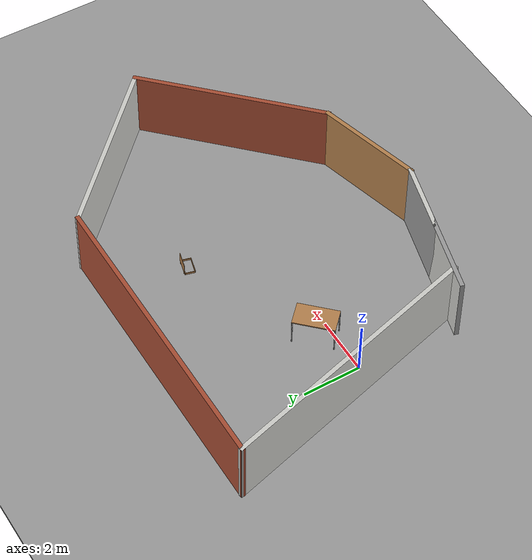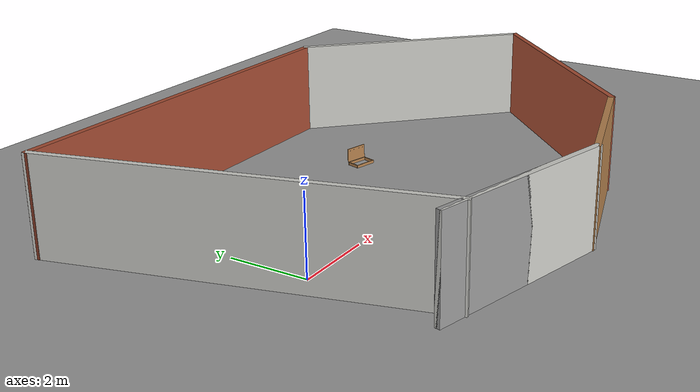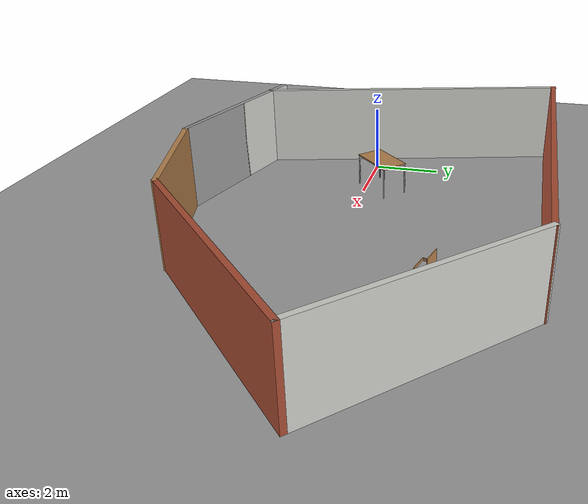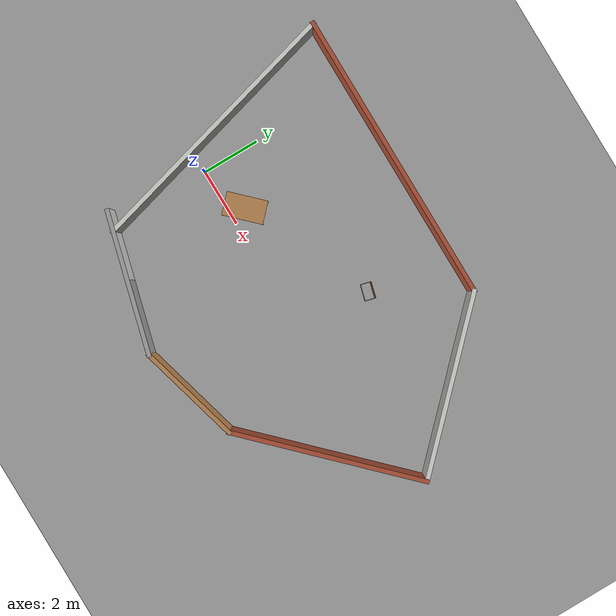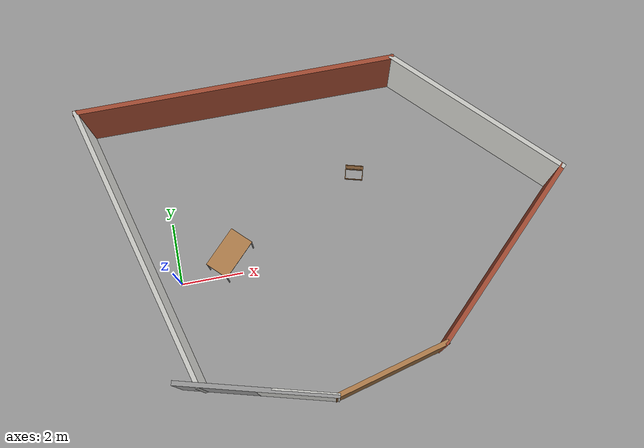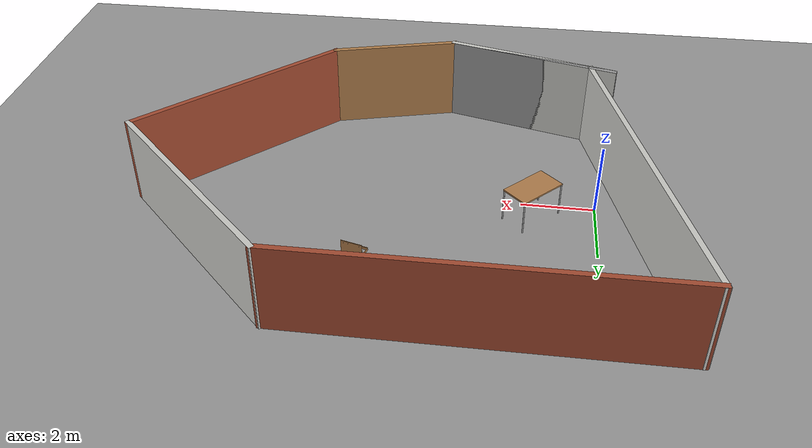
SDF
<sdf version="1.6">
 <world name="default">
  <light name="sun" type="directional">
   <pose>0 0 10 0 -0 0</pose>
   <diffuse>0.8 0.8 0.8 1</diffuse>
   <specular>0.1 0.1 0.1 1</specular>
   <attenuation>
    <range>1000</range>
    <constant>0.9</constant>
    <linear>0.01</linear>
    <quadratic>0.001</quadratic>
   </attenuation>
   <direction>-0.5 0.5 -1</direction>
  </light>
  <model name="ground_plane">
   <static>1</static>
   <link name="link">
    <collision name="collision">
     <geometry><plane><normal>0 0 1</normal><size>100 100</size></plane></geometry>
     <surface><friction><ode><mu>100</mu><mu2>50</mu2></ode></friction></surface>
    </collision>
    <visual name="visual">
     <cast_shadows>0</cast_shadows>
     <geometry><plane><normal>0 0 1</normal><size>100 100</size></plane></geometry>
     <material>
      <script><uri>file://media/materials/scripts/gazebo.material</uri><name>Gazebo/Grey</name></script>
     </material>
    </visual>
   </link>
  </model>
  <gravity>0 0 -9.8</gravity>
  <magnetic_field>6e-06 2.3e-05 -4.2e-05</magnetic_field>
  <atmosphere type="adiabatic"/>
  <physics name="default_physics" default="0" type="ode">
   <max_step_size>0.001</max_step_size>
   <real_time_factor>1</real_time_factor>
   <real_time_update_rate>1000</real_time_update_rate>
  </physics>
  <scene><ambient>0.4 0.4 0.4 1</ambient><background>0.7 0.7 0.7 1</background><shadows>1</shadows></scene>
  <spherical_coordinates>
   <surface_model>EARTH_WGS84</surface_model>
   <latitude_deg>0</latitude_deg>
   <longitude_deg>0</longitude_deg>
   <elevation>0</elevation>
   <heading_deg>0</heading_deg>
  </spherical_coordinates>
  <model name="ground_plane_0">
   <static>1</static>
   <link name="link">
    <collision name="collision">
     <geometry><plane><normal>0 0 1</normal><size>100 100</size></plane></geometry>
     <surface><friction><ode><mu>100</mu><mu2>50</mu2></ode></friction></surface>
    </collision>
    <visual name="visual">
     <cast_shadows>0</cast_shadows>
     <geometry><plane><normal>0 0 1</normal><size>100 100</size></plane></geometry>
     <material>
      <script><uri>file://media/materials/scripts/gazebo.material</uri><name>Gazebo/Grey</name></script>
     </material>
    </visual>
   </link>
   <pose>1.71999 -1.82773 0 0 -0 0</pose>
  </model>
  <model name="wooden_case">
   <link name="base">
    <pose>0 0 0.024 0 -0 0</pose>
    <inertial>
     <pose>-0.022184 0 0.171592 0 -0 0</pose>
     <mass>3.96264</mass>
     <inertia>
      <ixx>0.213536</ixx>
      <ixy>0</ixy>
      <ixz>0.000779377</ixz>
      <iyy>0.0708943</iyy>
      <iyz>0</iyz>
      <izz>0.154604</izz>
     </inertia>
    </inertial>
    <collision name="collision_back">
     <pose>-0.053975 0 0.1778 0 -0 0</pose>
     <geometry><box><size>0.01905 0.5461 0.3175</size></box></geometry>
     <surface>
      <contact>
       <poissons_ratio>0.347</poissons_ratio>
       <elastic_modulus>8.8e+09</elastic_modulus>
       <ode><kp>100000</kp><kd>100</kd><max_vel>100</max_vel><min_depth>0.001</min_depth></ode>
      </contact>
      <friction>
       <torsional>
        <coefficient>1</coefficient>
        <use_patch_radius>0</use_patch_radius>
        <surface_radius>0.01</surface_radius>
       </torsional>
      </friction>
     </surface>
    </collision>
    <visual name="visual_back">
     <pose>-0.053975 0 0.1778 0 -0 0</pose>
     <geometry><box><size>0.01905 0.5461 0.3175</size></box></geometry>
     <material>
      <script><uri>file://media/materials/scripts/gazebo.material</uri><name>Gazebo/Wood</name></script>
     </material>
    </visual>
    <collision name="collision_bottom">
     <pose>0 0 0.009525 0 -0 0</pose>
     <geometry><box><size>0.127 0.5842 0.01905</size></box></geometry>
     <surface>
      <contact>
       <poissons_ratio>0.347</poissons_ratio>
       <elastic_modulus>8.8e+09</elastic_modulus>
       <ode><kp>100000</kp><kd>100</kd><max_vel>100</max_vel><min_depth>0.001</min_depth></ode>
      </contact>
      <friction>
       <torsional>
        <coefficient>1</coefficient>
        <use_patch_radius>0</use_patch_radius>
        <surface_radius>0.01</surface_radius>
       </torsional>
      </friction>
     </surface>
    </collision>
    <visual name="visual_bottom">
     <pose>0 0 0.009525 0 -0 0</pose>
     <geometry><box><size>0.127 0.5842 0.01905</size></box></geometry>
     <material>
      <script><uri>file://media/materials/scripts/gazebo.material</uri><name>Gazebo/Wood</name></script>
     </material>
    </visual>
    <collision name="collision_top">
     <pose>0 0 0.346075 0 -0 0</pose>
     <geometry><box><size>0.127 0.5842 0.01905</size></box></geometry>
     <surface>
      <contact>
       <poissons_ratio>0.347</poissons_ratio>
       <elastic_modulus>8.8e+09</elastic_modulus>
       <ode><kp>100000</kp><kd>100</kd><max_vel>100</max_vel><min_depth>0.001</min_depth></ode>
      </contact>
      <friction>
       <torsional>
        <coefficient>1</coefficient>
        <use_patch_radius>0</use_patch_radius>
        <surface_radius>0.01</surface_radius>
       </torsional>
      </friction>
     </surface>
    </collision>
    <visual name="visual_top">
     <pose>0 0 0.346075 0 -0 0</pose>
     <geometry><box><size>0.127 0.5842 0.01905</size></box></geometry>
     <material>
      <script><uri>file://media/materials/scripts/gazebo.material</uri><name>Gazebo/Wood</name></script>
     </material>
    </visual>
    <collision name="collision_left">
     <pose>0 -0.282575 0.1778 0 -0 0</pose>
     <geometry><box><size>0.127 0.01905 0.3175</size></box></geometry>
     <surface>
      <contact>
       <poissons_ratio>0.347</poissons_ratio>
       <elastic_modulus>8.8e+09</elastic_modulus>
       <ode><kp>100000</kp><kd>100</kd><max_vel>100</max_vel><min_depth>0.001</min_depth></ode>
      </contact>
      <friction>
       <torsional>
        <coefficient>1</coefficient>
        <use_patch_radius>0</use_patch_radius>
        <surface_radius>0.01</surface_radius>
       </torsional>
      </friction>
     </surface>
    </collision>
    <visual name="visual_left">
     <pose>0 -0.282575 0.1778 0 -0 0</pose>
     <geometry><box><size>0.127 0.01905 0.3175</size></box></geometry>
     <material>
      <script><uri>file://media/materials/scripts/gazebo.material</uri><name>Gazebo/Wood</name></script>
     </material>
    </visual>
    <collision name="collision_right">
     <pose>0 0.282575 0.1778 0 -0 0</pose>
     <geometry><box><size>0.127 0.01905 0.3175</size></box></geometry>
     <surface>
      <contact>
       <poissons_ratio>0.347</poissons_ratio>
       <elastic_modulus>8.8e+09</elastic_modulus>
       <ode><kp>100000</kp><kd>100</kd><max_vel>100</max_vel><min_depth>0.001</min_depth></ode>
      </contact>
      <friction>
       <torsional>
        <coefficient>1</coefficient>
        <use_patch_radius>0</use_patch_radius>
        <surface_radius>0.01</surface_radius>
       </torsional>
      </friction>
     </surface>
    </collision>
    <visual name="visual_right">
     <pose>0 0.282575 0.1778 0 -0 0</pose>
     <geometry><box><size>0.127 0.01905 0.3175</size></box></geometry>
     <material>
      <script><uri>file://media/materials/scripts/gazebo.material</uri><name>Gazebo/Wood</name></script>
     </material>
    </visual>
    <collision name="collision_block_left">
     <pose>0.0095 -0.2151 -0.012 0 -0 0</pose>
     <geometry><box><size>0.108 0.05 0.024</size></box></geometry>
     <surface>
      <contact>
       <poissons_ratio>0.347</poissons_ratio>
       <elastic_modulus>8.8e+09</elastic_modulus>
       <ode><kp>100000</kp><kd>100</kd><max_vel>100</max_vel><min_depth>0.001</min_depth></ode>
      </contact>
      <friction>
       <torsional>
        <coefficient>1</coefficient>
        <use_patch_radius>0</use_patch_radius>
        <surface_radius>0.01</surface_radius>
       </torsional>
      </friction>
     </surface>
    </collision>
    <visual name="visual_block_left">
     <pose>0.0095 -0.2151 -0.012 0 -0 0</pose>
     <geometry><box><size>0.108 0.05 0.024</size></box></geometry>
     <material>
      <script><uri>file://media/materials/scripts/gazebo.material</uri><name>Gazebo/Wood</name></script>
     </material>
    </visual>
    <collision name="collision_block_right">
     <pose>0.0095 0.2151 -0.012 0 -0 0</pose>
     <geometry><box><size>0.108 0.05 0.024</size></box></geometry>
     <surface>
      <contact>
       <poissons_ratio>0.347</poissons_ratio>
       <elastic_modulus>8.8e+09</elastic_modulus>
       <ode><kp>100000</kp><kd>100</kd><max_vel>100</max_vel><min_depth>0.001</min_depth></ode>
      </contact>
      <friction>
       <torsional>
        <coefficient>1</coefficient>
        <use_patch_radius>0</use_patch_radius>
        <surface_radius>0.01</surface_radius>
       </torsional>
      </friction>
     </surface>
    </collision>
    <visual name="visual_block_right">
     <pose>0.0095 0.2151 -0.012 0 -0 0</pose>
     <geometry><box><size>0.108 0.05 0.024</size></box></geometry>
     <material>
      <script><uri>file://media/materials/scripts/gazebo.material</uri><name>Gazebo/Wood</name></script>
     </material>
    </visual>
   </link>
   <link name="lid">
    <pose>0.243775 0 0.009525 0 -0 0</pose>
    <inertial>
     <mass>1.97874</mass>
     <inertia>
      <ixx>0.0563367</ixx>
      <ixy>0</ixy>
      <ixz>0</ixz>
      <iyy>0.020911</iyy>
      <iyz>0</iyz>
      <izz>0.0771281</izz>
     </inertia>
    </inertial>
    <collision name="collision">
     <geometry><box><size>0.3556 0.5842 0.01905</size></box></geometry>
     <surface>
      <contact>
       <poissons_ratio>0.347</poissons_ratio>
       <elastic_modulus>8.8e+09</elastic_modulus>
       <ode><kp>100000</kp><kd>100</kd><max_vel>100</max_vel><min_depth>0.001</min_depth></ode>
      </contact>
      <friction>
       <torsional>
        <coefficient>1</coefficient>
        <use_patch_radius>0</use_patch_radius>
        <surface_radius>0.01</surface_radius>
       </torsional>
      </friction>
     </surface>
    </collision>
    <visual name="visual">
     <geometry><box><size>0.3556 0.5842 0.01905</size></box></geometry>
     <material>
      <script><uri>file://media/materials/scripts/gazebo.material</uri><name>Gazebo/Wood</name></script>
     </material>
    </visual>
    <visual name="tee_nut_1">
     <pose>0.122 -0.216 0 0 -0 0</pose>
     <geometry><cylinder><radius>0.00635</radius><length>0.0192405</length></cylinder></geometry>
     <material>
      <script><uri>file://media/materials/scripts/gazebo.material</uri><name>Gazebo/Grey</name></script>
     </material>
    </visual>
    <visual name="tee_nut_2">
     <pose>0.122 -0.088 0 0 -0 0</pose>
     <geometry><cylinder><radius>0.00635</radius><length>0.0192405</length></cylinder></geometry>
     <material>
      <script><uri>file://media/materials/scripts/gazebo.material</uri><name>Gazebo/Grey</name></script>
     </material>
    </visual>
    <visual name="tee_nut_3">
     <pose>0.122 0.088 0 0 -0 0</pose>
     <geometry><cylinder><radius>0.00635</radius><length>0.0192405</length></cylinder></geometry>
     <material>
      <script><uri>file://media/materials/scripts/gazebo.material</uri><name>Gazebo/Grey</name></script>
     </material>
    </visual>
    <visual name="tee_nut_4">
     <pose>0.122 0.216 0 0 -0 0</pose>
     <geometry><cylinder><radius>0.00635</radius><length>0.0192405</length></cylinder></geometry>
     <material>
      <script><uri>file://media/materials/scripts/gazebo.material</uri><name>Gazebo/Grey</name></script>
     </material>
    </visual>
   </link>
   <joint name="lid_hinge" type="revolute">
    <pose>-0.1778 0 0.01905 0 -0 0</pose>
    <parent>base</parent>
    <child>lid</child>
    <axis>
     <xyz>0 1 0</xyz>
     <limit><upper>0.523599</upper><lower>-1.5708</lower></limit>
     <use_parent_model_frame>0</use_parent_model_frame>
     <dynamics><spring_reference>0</spring_reference><spring_stiffness>0</spring_stiffness></dynamics>
    </axis>
   </joint>
   <pose>6.24551 2.77691 0.062485 -1e-06 -1.57079 1.31006</pose>
  </model>
  <model name="table">
   <static>0</static>
   <link name="link">
    <collision name="surface">
     <pose>0 0 1 0 -0 0</pose>
     <geometry><box><size>1.5 0.8 0.03</size></box></geometry>
     <surface><friction><ode><mu>0.6</mu><mu2>0.6</mu2></ode></friction></surface>
    </collision>
    <visual name="visual1">
     <pose>0 0 1 0 -0 0</pose>
     <geometry><box><size>1.4 0.8 0.04</size></box></geometry>
     <material>
      <script><uri>file://media/materials/scripts/gazebo.material</uri><name>Gazebo/Wood</name></script>
     </material>
    </visual>
    <collision name="front_left_leg">
     <pose>0.68 0.38 0.5 0 -0 0</pose>
     <geometry><cylinder><radius>0.02</radius><length>1</length></cylinder></geometry>
    </collision>
    <visual name="front_left_leg">
     <pose>0.68 0.38 0.5 0 -0 0</pose>
     <geometry><cylinder><radius>0.02</radius><length>1</length></cylinder></geometry>
     <material>
      <script><uri>file://media/materials/scripts/gazebo.material</uri><name>Gazebo/Grey</name></script>
     </material>
    </visual>
    <collision name="front_right_leg">
     <pose>0.68 -0.38 0.5 0 -0 0</pose>
     <geometry><cylinder><radius>0.02</radius><length>1</length></cylinder></geometry>
    </collision>
    <visual name="front_right_leg">
     <pose>0.68 -0.38 0.5 0 -0 0</pose>
     <geometry><cylinder><radius>0.02</radius><length>1</length></cylinder></geometry>
     <material>
      <script><uri>file://media/materials/scripts/gazebo.material</uri><name>Gazebo/Grey</name></script>
     </material>
    </visual>
    <collision name="back_right_leg">
     <pose>-0.68 -0.38 0.5 0 -0 0</pose>
     <geometry><cylinder><radius>0.02</radius><length>1</length></cylinder></geometry>
    </collision>
    <visual name="back_right_leg">
     <pose>-0.68 -0.38 0.5 0 -0 0</pose>
     <geometry><cylinder><radius>0.02</radius><length>1</length></cylinder></geometry>
     <material>
      <script><uri>file://media/materials/scripts/gazebo.material</uri><name>Gazebo/Grey</name></script>
     </material>
    </visual>
    <collision name="back_left_leg">
     <pose>-0.68 0.38 0.5 0 -0 0</pose>
     <geometry><cylinder><radius>0.02</radius><length>1</length></cylinder></geometry>
    </collision>
    <visual name="back_left_leg">
     <pose>-0.68 0.38 0.5 0 -0 0</pose>
     <geometry><cylinder><radius>0.02</radius><length>1</length></cylinder></geometry>
     <material>
      <script><uri>file://media/materials/scripts/gazebo.material</uri><name>Gazebo/Grey</name></script>
     </material>
    </visual>
    <inertial>
     <inertia><ixx>1</ixx><ixy>0</ixy><ixz>0</ixz><iyy>1</iyy><iyz>0</iyz><izz>1</izz></inertia>
     <mass>1</mass>
    </inertial>
   </link>
   <pose>1.73103 0.525567 0.002383 0.005958 0 0.797318</pose>
  </model>
  <model name="wans2">
   <pose>5.13102 0.466224 0 0 -0 0</pose>
   <link name="Wall_0">
    <collision name="Wall_0_Collision">
     <geometry><box><size>5 0.15 2.5</size></box></geometry>
     <pose>0 0 1.25 0 -0 0</pose>
    </collision>
    <visual name="Wall_0_Visual">
     <pose>0 0 1.25 0 -0 0</pose>
     <geometry><box><size>5 0.15 2.5</size></box></geometry>
     <material>
      <script><uri>file://media/materials/scripts/gazebo.material</uri><name>Gazebo/Grey</name></script>
      <ambient>1 1 1 1</ambient>
     </material>
    </visual>
    <pose>-3.19865 -4.42386 0 0 0 -0.261799</pose>
   </link>
   <link name="Wall_1">
    <collision name="Wall_1_Collision">
     <geometry><box><size>5 0.15 2.5</size></box></geometry>
     <pose>0 0 1.25 0 -0 0</pose>
    </collision>
    <visual name="Wall_1_Visual">
     <pose>0 0 1.25 0 -0 0</pose>
     <geometry><box><size>5 0.15 2.5</size></box></geometry>
     <material>
      <script><uri>file://media/materials/scripts/gazebo.material</uri><name>Gazebo/CeilingTiled</name></script>
      <ambient>1 1 1 1</ambient>
     </material>
    </visual>
    <pose>-3.19865 -4.42386 0 0 -0 2.87979</pose>
   </link>
   <link name="Wall_3">
    <collision name="Wall_3_Collision">
     <geometry><box><size>3.75 0.15 2.5</size></box></geometry>
     <pose>0 0 1.25 0 -0 0</pose>
    </collision>
    <visual name="Wall_3_Visual">
     <pose>0 0 1.25 0 -0 0</pose>
     <geometry><box><size>3.75 0.15 2.5</size></box></geometry>
     <material>
      <script><uri>file://media/materials/scripts/gazebo.material</uri><name>Gazebo/Wood</name></script>
      <ambient>1 1 1 1</ambient>
     </material>
    </visual>
    <pose>0.882387 -4.58562 0 0 -0 0.261799</pose>
   </link>
   <link name="Wall_5">
    <collision name="Wall_5_Collision">
     <geometry><box><size>6.75 0.15 2.5</size></box></geometry>
     <pose>0 0 1.25 0 -0 0</pose>
    </collision>
    <visual name="Wall_5_Visual">
     <pose>0 0 1.25 0 -0 0</pose>
     <geometry><box><size>6.75 0.15 2.5</size></box></geometry>
     <material>
      <script><uri>file://media/materials/scripts/gazebo.material</uri><name>Gazebo/Bricks</name></script>
      <ambient>1 1 1 1</ambient>
     </material>
    </visual>
    <pose>4.95451 -1.78629 0 0 -0 0.785398</pose>
   </link>
   <link name="Wall_6">
    <collision name="Wall_6_Collision">
     <geometry><box><size>6.5 0.15 2.5</size></box></geometry>
     <pose>0 0 1.25 0 -0 0</pose>
    </collision>
    <visual name="Wall_6_Visual">
     <pose>0 0 1.25 0 -0 0</pose>
     <geometry><box><size>6.5 0.15 2.5</size></box></geometry>
     <material>
      <script><uri>file://media/materials/scripts/gazebo.material</uri><name>Gazebo/CeilingTiled</name></script>
      <ambient>1 1 1 1</ambient>
     </material>
    </visual>
    <pose>5.04289 2.79222 0 0 -0 2.35619</pose>
   </link>
   <link name="Wall_7">
    <collision name="Wall_7_Collision">
     <geometry><box><size>10.25 0.15 2.5</size></box></geometry>
     <pose>0 0 1.25 0 -0 0</pose>
    </collision>
    <visual name="Wall_7_Visual">
     <pose>0 0 1.25 0 -0 0</pose>
     <geometry><box><size>10.25 0.15 2.5</size></box></geometry>
     <material>
      <script><uri>file://media/materials/scripts/gazebo.material</uri><name>Gazebo/Bricks</name></script>
      <ambient>1 1 1 1</ambient>
     </material>
    </visual>
    <pose>-2.25217 5.03728 0 0 -0 3.14159</pose>
   </link>
   <link name="Wall_8">
    <collision name="Wall_8_Collision">
     <geometry><box><size>9.5 0.15 2.5</size></box></geometry>
     <pose>0 0 1.25 0 -0 0</pose>
    </collision>
    <visual name="Wall_8_Visual">
     <pose>0 0 1.25 0 -0 0</pose>
     <geometry><box><size>9.5 0.15 2.5</size></box></geometry>
     <material>
      <script><uri>file://media/materials/scripts/gazebo.material</uri><name>Gazebo/CeilingTiled</name></script>
      <ambient>1 1 1 1</ambient>
     </material>
    </visual>
    <pose>-6.09219 0.521582 0 0 0 -1.309</pose>
   </link>
   <static>1</static>
  </model>
 </world>
</sdf>
